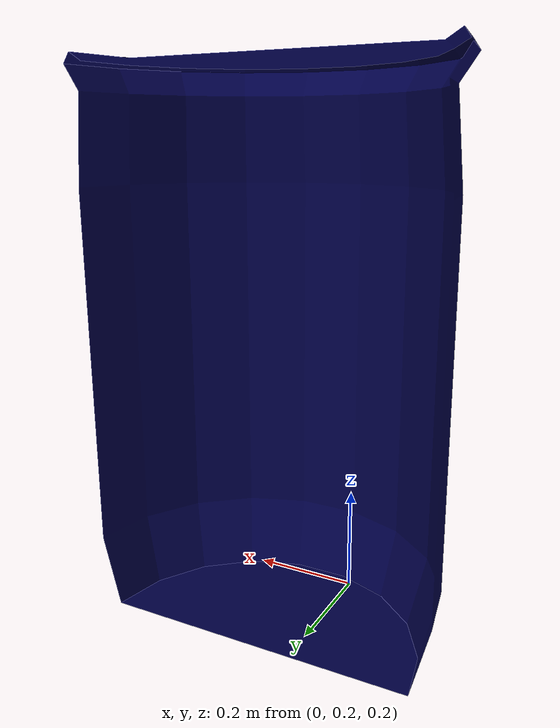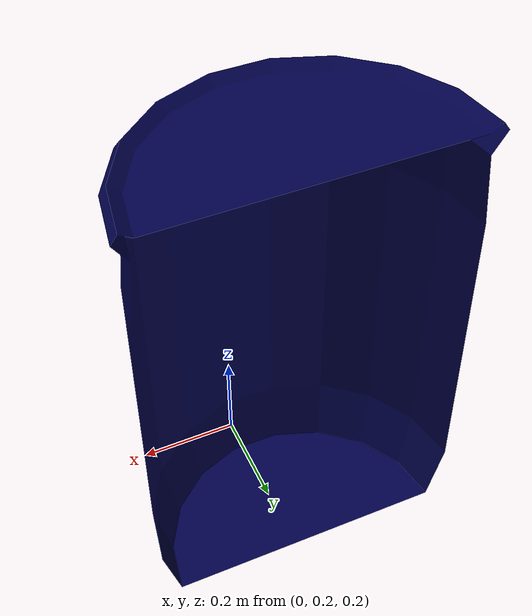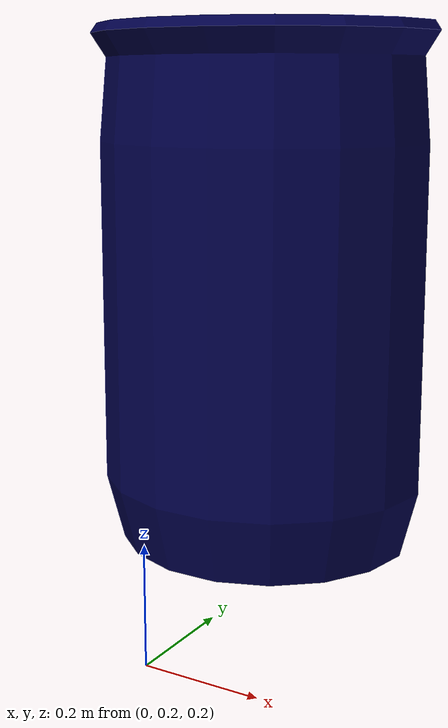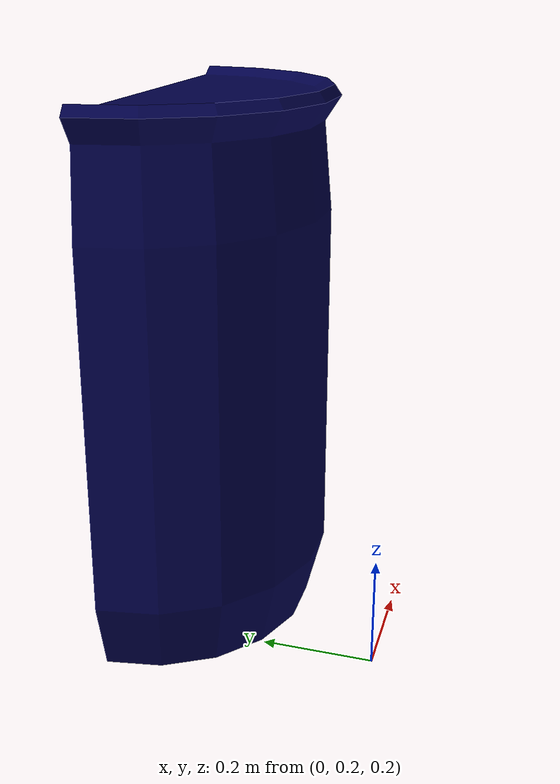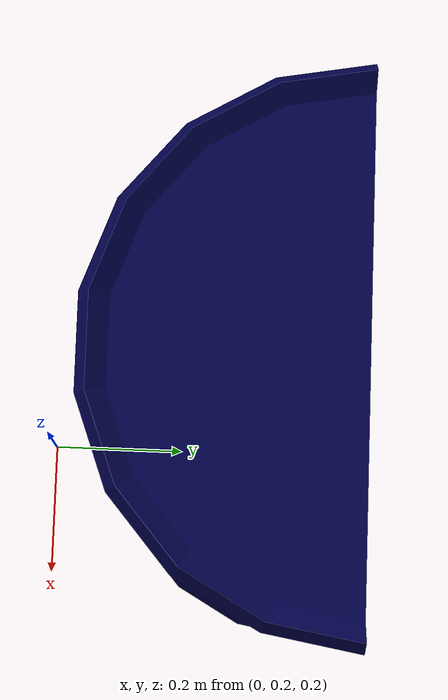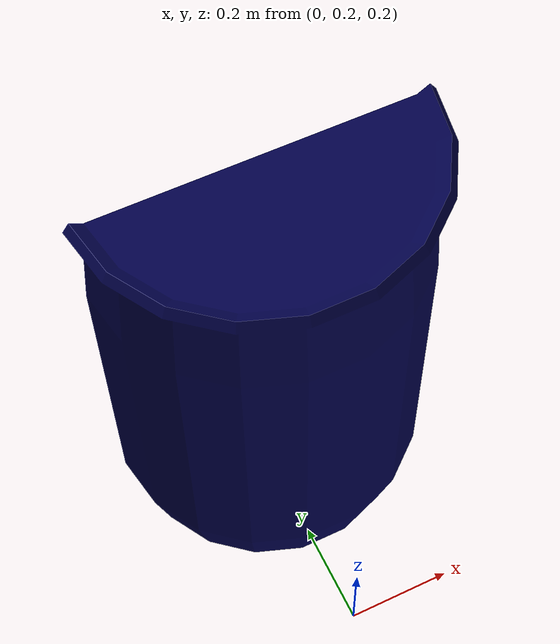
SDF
<?xml version="1.0" ?>
<sdf version="1.4">
  <model name="nist_fiducial_barrel">
    <static>true</static>
    <link name="nist_fiducial_barrel_link">
      <pose>0 0 0.0 0 0 0</pose>
      <collision name="collision">
        <geometry>
          <mesh>
            <uri>model://nist_fiducial_barrel/meshes/nist_fiducial_barrel.dae</uri>
            <scale>1 1 1</scale>
          </mesh>
        </geometry>
      </collision>
      <visual name="visual">
        <geometry>
          <mesh>
            <uri>model://nist_fiducial_barrel/meshes/nist_fiducial_barrel.dae</uri>
            <scale>1 1 1</scale>
          </mesh>
        </geometry>
      </visual>
    </link>
  </model>
</sdf>
